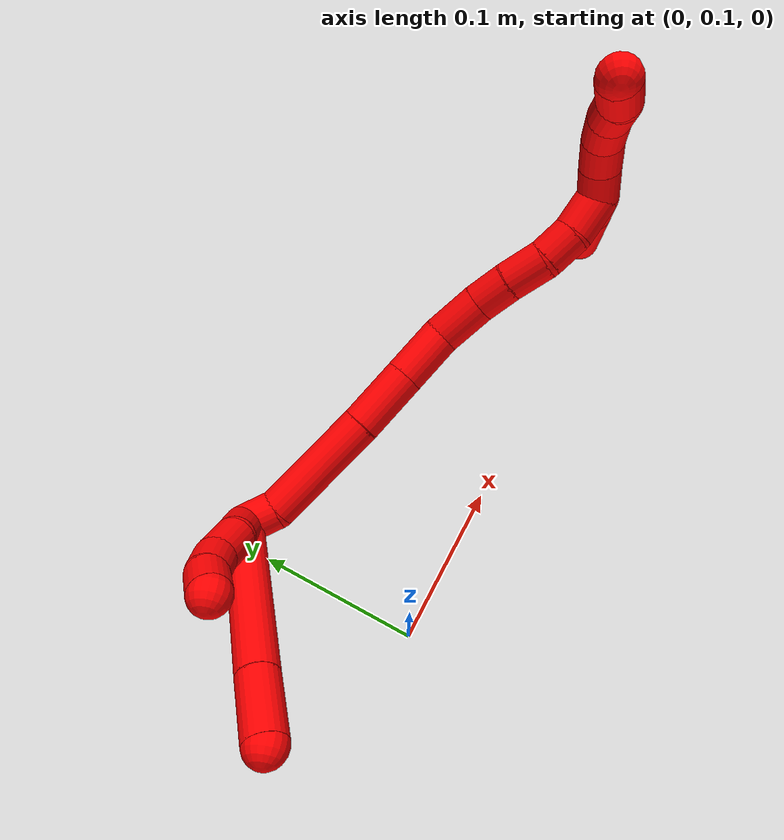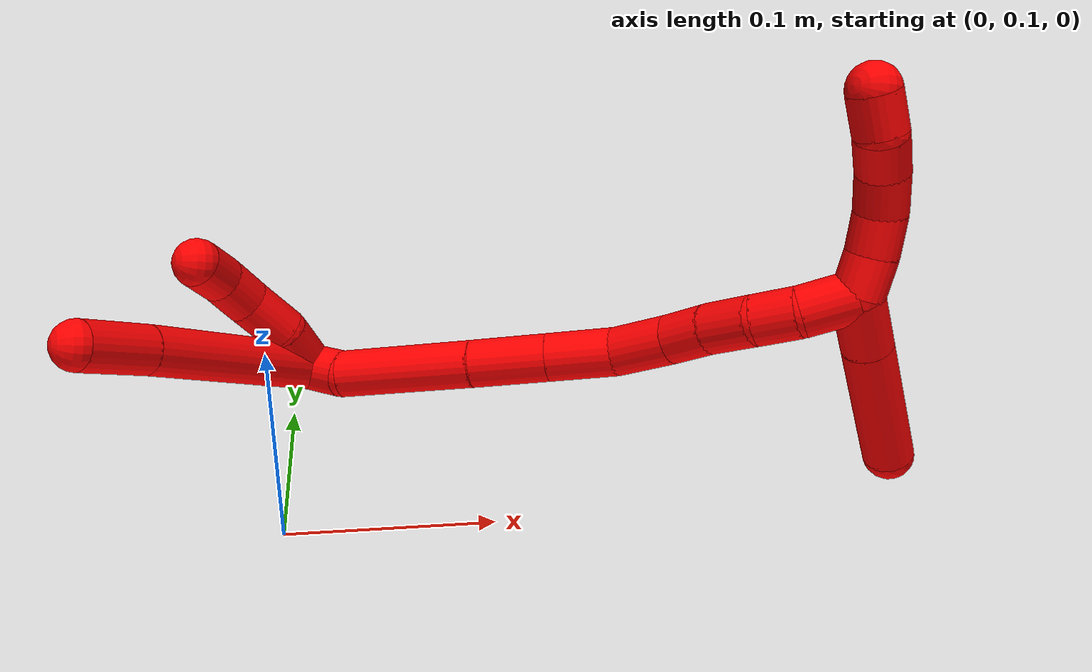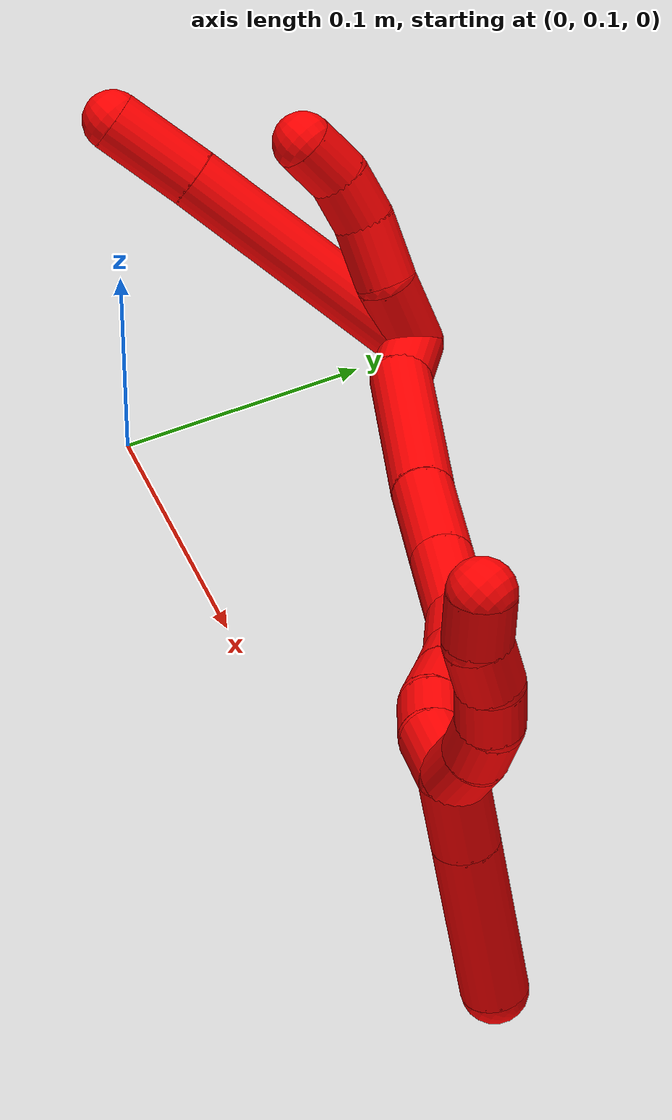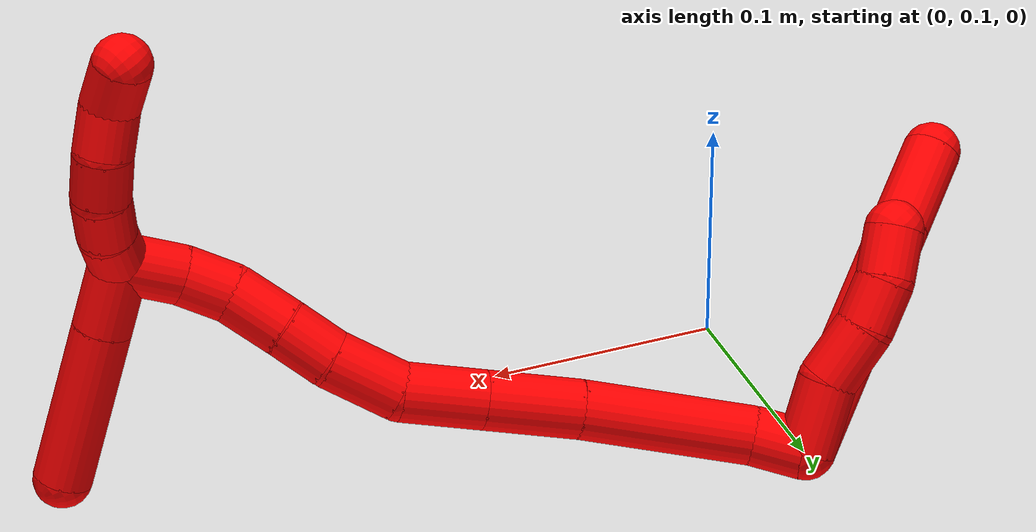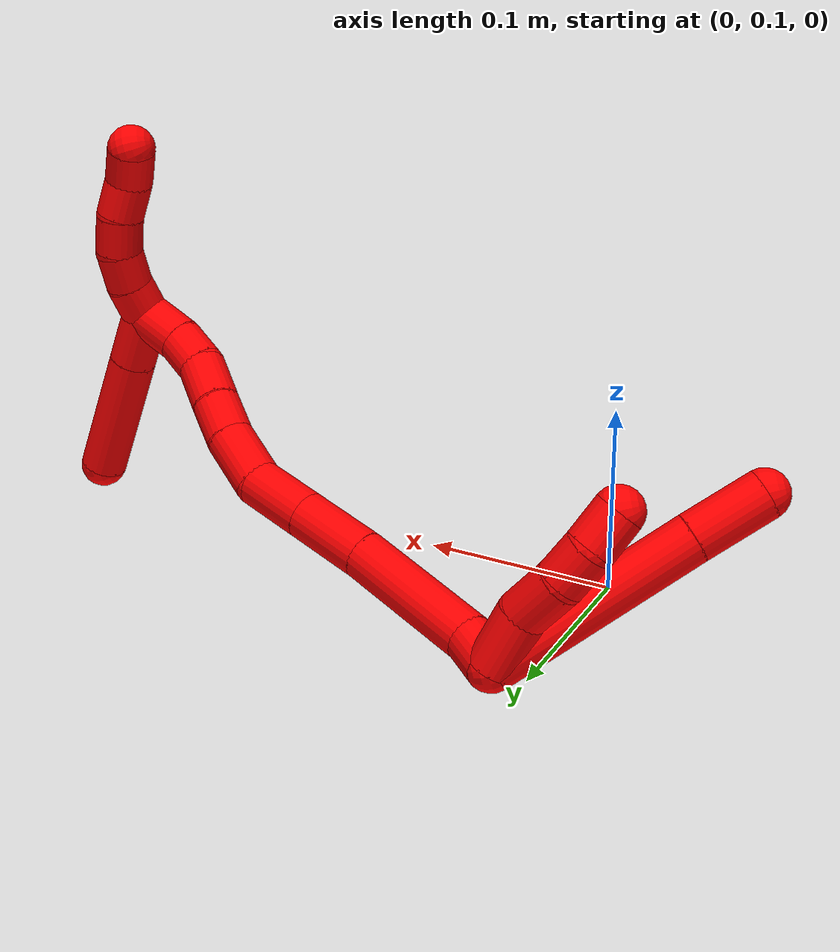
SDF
<sdf version="1.7">
 <world name="default">
  <model name="2">
   <static>0</static>
   <link name="2">
    <collision name="collision-cylinder-e_1_2_8">
     <pose>0.018017 -0.008734 0.05172 0.167294 0.330856 0.027994</pose>
     <geometry><cylinder><radius>0.0125</radius><length>0.110921</length></cylinder></geometry>
     <surface>
      <friction><ode><mu>1.16</mu><mu2>1.16</mu2><slip1>0</slip1><slip2>0</slip2></ode></friction>
      <contact><ode><kp>1e+06</kp><kd>1</kd><max_vel>0</max_vel><min_depth>0.001</min_depth></ode></contact>
     </surface>
    </collision>
    <visual name="visual-cylinder-e_1_2_8">
     <pose>0.018017 -0.008734 0.05172 0.167294 0.330856 0.027994</pose>
     <geometry><cylinder><radius>0.0125</radius><length>0.110921</length></cylinder></geometry>
     <material><ambient>1 0 0 1</ambient></material>
    </visual>
    <collision name="collision-cylinder-e_2_8_6">
     <pose>0.042008 -0.021023 0.121701 0.192276 0.310742 0.030208</pose>
     <geometry><cylinder><radius>0.0125</radius><length>0.039079</length></cylinder></geometry>
     <surface>
      <friction><ode><mu>1.16</mu><mu2>1.16</mu2><slip1>0</slip1><slip2>0</slip2></ode></friction>
      <contact><ode><kp>1e+06</kp><kd>1</kd><max_vel>0</max_vel><min_depth>0.001</min_depth></ode></contact>
     </surface>
    </collision>
    <visual name="visual-cylinder-e_2_8_6">
     <pose>0.042008 -0.021023 0.121701 0.192276 0.310742 0.030208</pose>
     <geometry><cylinder><radius>0.0125</radius><length>0.039079</length></cylinder></geometry>
     <material><ambient>1 0 0 1</ambient></material>
    </visual>
    <collision name="collision-cylinder-e_1_2_9">
     <pose>0.010315 0.004246 0.010833 -0.373555 0.72531 -0.143167</pose>
     <geometry><cylinder><radius>0.0125</radius><length>0.031099</length></cylinder></geometry>
     <surface>
      <friction><ode><mu>1.16</mu><mu2>1.16</mu2><slip1>0</slip1><slip2>0</slip2></ode></friction>
      <contact><ode><kp>1e+06</kp><kd>1</kd><max_vel>0</max_vel><min_depth>0.001</min_depth></ode></contact>
     </surface>
    </collision>
    <visual name="visual-cylinder-e_1_2_9">
     <pose>0.010315 0.004246 0.010833 -0.373555 0.72531 -0.143167</pose>
     <geometry><cylinder><radius>0.0125</radius><length>0.031099</length></cylinder></geometry>
     <material><ambient>1 0 0 1</ambient></material>
    </visual>
    <collision name="collision-cylinder-e_2_9_10">
     <pose>0.0259 0.013661 0.032702 -0.438004 0.408145 -0.092059</pose>
     <geometry><cylinder><radius>0.0125</radius><length>0.026552</length></cylinder></geometry>
     <surface>
      <friction><ode><mu>1.16</mu><mu2>1.16</mu2><slip1>0</slip1><slip2>0</slip2></ode></friction>
      <contact><ode><kp>1e+06</kp><kd>1</kd><max_vel>0</max_vel><min_depth>0.001</min_depth></ode></contact>
     </surface>
    </collision>
    <visual name="visual-cylinder-e_2_9_10">
     <pose>0.0259 0.013661 0.032702 -0.438004 0.408145 -0.092059</pose>
     <geometry><cylinder><radius>0.0125</radius><length>0.026552</length></cylinder></geometry>
     <material><ambient>1 0 0 1</ambient></material>
    </visual>
    <collision name="collision-cylinder-e_3_10_11">
     <pose>0.036863 0.021074 0.052287 -0.256739 0.572201 -0.075906</pose>
     <geometry><cylinder><radius>0.0125</radius><length>0.02103</length></cylinder></geometry>
     <surface>
      <friction><ode><mu>1.16</mu><mu2>1.16</mu2><slip1>0</slip1><slip2>0</slip2></ode></friction>
      <contact><ode><kp>1e+06</kp><kd>1</kd><max_vel>0</max_vel><min_depth>0.001</min_depth></ode></contact>
     </surface>
    </collision>
    <visual name="visual-cylinder-e_3_10_11">
     <pose>0.036863 0.021074 0.052287 -0.256739 0.572201 -0.075906</pose>
     <geometry><cylinder><radius>0.0125</radius><length>0.02103</length></cylinder></geometry>
     <material><ambient>1 0 0 1</ambient></material>
    </visual>
    <collision name="collision-cylinder-e_4_11_5">
     <pose>0.049098 0.022701 0.069231 0.073496 0.660698 0.025213</pose>
     <geometry><cylinder><radius>0.0125</radius><length>0.021318</length></cylinder></geometry>
     <surface>
      <friction><ode><mu>1.16</mu><mu2>1.16</mu2><slip1>0</slip1><slip2>0</slip2></ode></friction>
      <contact><ode><kp>1e+06</kp><kd>1</kd><max_vel>0</max_vel><min_depth>0.001</min_depth></ode></contact>
     </surface>
    </collision>
    <visual name="visual-cylinder-e_4_11_5">
     <pose>0.049098 0.022701 0.069231 0.073496 0.660698 0.025213</pose>
     <geometry><cylinder><radius>0.0125</radius><length>0.021318</length></cylinder></geometry>
     <material><ambient>1 0 0 1</ambient></material>
    </visual>
    <collision name="collision-cylinder-e_1_2_12">
     <pose>0.007244 -0.007244 -0.004856 2.16137 0.69315 1.19012</pose>
     <geometry><cylinder><radius>0.0125</radius><length>0.022675</length></cylinder></geometry>
     <surface>
      <friction><ode><mu>1.16</mu><mu2>1.16</mu2><slip1>0</slip1><slip2>0</slip2></ode></friction>
      <contact><ode><kp>1e+06</kp><kd>1</kd><max_vel>0</max_vel><min_depth>0.001</min_depth></ode></contact>
     </surface>
    </collision>
    <visual name="visual-cylinder-e_1_2_12">
     <pose>0.007244 -0.007244 -0.004856 2.16137 0.69315 1.19012</pose>
     <geometry><cylinder><radius>0.0125</radius><length>0.022675</length></cylinder></geometry>
     <material><ambient>1 0 0 1</ambient></material>
    </visual>
    <collision name="collision-cylinder-e_2_12_13">
     <pose>0.039592 -0.027978 -0.033158 2.61946 0.748114 1.94642</pose>
     <geometry><cylinder><radius>0.0125</radius><length>0.073807</length></cylinder></geometry>
     <surface>
      <friction><ode><mu>1.16</mu><mu2>1.16</mu2><slip1>0</slip1><slip2>0</slip2></ode></friction>
      <contact><ode><kp>1e+06</kp><kd>1</kd><max_vel>0</max_vel><min_depth>0.001</min_depth></ode></contact>
     </surface>
    </collision>
    <visual name="visual-cylinder-e_2_12_13">
     <pose>0.039592 -0.027978 -0.033158 2.61946 0.748114 1.94642</pose>
     <geometry><cylinder><radius>0.0125</radius><length>0.073807</length></cylinder></geometry>
     <material><ambient>1 0 0 1</ambient></material>
    </visual>
    <collision name="collision-cylinder-e_3_13_14">
     <pose>0.077894 -0.048253 -0.070391 2.68431 0.7096 2.0199</pose>
     <geometry><cylinder><radius>0.0125</radius><length>0.040513</length></cylinder></geometry>
     <surface>
      <friction><ode><mu>1.16</mu><mu2>1.16</mu2><slip1>0</slip1><slip2>0</slip2></ode></friction>
      <contact><ode><kp>1e+06</kp><kd>1</kd><max_vel>0</max_vel><min_depth>0.001</min_depth></ode></contact>
     </surface>
    </collision>
    <visual name="visual-cylinder-e_3_13_14">
     <pose>0.077894 -0.048253 -0.070391 2.68431 0.7096 2.0199</pose>
     <geometry><cylinder><radius>0.0125</radius><length>0.040513</length></cylinder></geometry>
     <material><ambient>1 0 0 1</ambient></material>
    </visual>
    <collision name="collision-cylinder-e_4_14_15">
     <pose>0.102534 -0.060894 -0.096138 2.68623 0.709915 2.02425</pose>
     <geometry><cylinder><radius>0.0125</radius><length>0.035114</length></cylinder></geometry>
     <surface>
      <friction><ode><mu>1.16</mu><mu2>1.16</mu2><slip1>0</slip1><slip2>0</slip2></ode></friction>
      <contact><ode><kp>1e+06</kp><kd>1</kd><max_vel>0</max_vel><min_depth>0.001</min_depth></ode></contact>
     </surface>
    </collision>
    <visual name="visual-cylinder-e_4_14_15">
     <pose>0.102534 -0.060894 -0.096138 2.68623 0.709915 2.02425</pose>
     <geometry><cylinder><radius>0.0125</radius><length>0.035114</length></cylinder></geometry>
     <material><ambient>1 0 0 1</ambient></material>
    </visual>
    <collision name="collision-cylinder-e_5_15_16">
     <pose>0.127281 -0.072143 -0.114382 2.43245 1.01397 1.96573</pose>
     <geometry><cylinder><radius>0.0125</radius><length>0.031342</length></cylinder></geometry>
     <surface>
      <friction><ode><mu>1.16</mu><mu2>1.16</mu2><slip1>0</slip1><slip2>0</slip2></ode></friction>
      <contact><ode><kp>1e+06</kp><kd>1</kd><max_vel>0</max_vel><min_depth>0.001</min_depth></ode></contact>
     </surface>
    </collision>
    <visual name="visual-cylinder-e_5_15_16">
     <pose>0.127281 -0.072143 -0.114382 2.43245 1.01397 1.96573</pose>
     <geometry><cylinder><radius>0.0125</radius><length>0.031342</length></cylinder></geometry>
     <material><ambient>1 0 0 1</ambient></material>
    </visual>
    <collision name="collision-cylinder-e_6_16_17">
     <pose>0.150742 -0.081646 -0.123532 2.17953 1.11255 1.74496</pose>
     <geometry><cylinder><radius>0.0125</radius><length>0.02265</length></cylinder></geometry>
     <surface>
      <friction><ode><mu>1.16</mu><mu2>1.16</mu2><slip1>0</slip1><slip2>0</slip2></ode></friction>
      <contact><ode><kp>1e+06</kp><kd>1</kd><max_vel>0</max_vel><min_depth>0.001</min_depth></ode></contact>
     </surface>
    </collision>
    <visual name="visual-cylinder-e_6_16_17">
     <pose>0.150742 -0.081646 -0.123532 2.17953 1.11255 1.74496</pose>
     <geometry><cylinder><radius>0.0125</radius><length>0.02265</length></cylinder></geometry>
     <material><ambient>1 0 0 1</ambient></material>
    </visual>
    <collision name="collision-cylinder-e_7_17_18">
     <pose>0.172058 -0.09127 -0.129565 2.09233 1.05283 1.57491</pose>
     <geometry><cylinder><radius>0.0125</radius><length>0.02569</length></cylinder></geometry>
     <surface>
      <friction><ode><mu>1.16</mu><mu2>1.16</mu2><slip1>0</slip1><slip2>0</slip2></ode></friction>
      <contact><ode><kp>1e+06</kp><kd>1</kd><max_vel>0</max_vel><min_depth>0.001</min_depth></ode></contact>
     </surface>
    </collision>
    <visual name="visual-cylinder-e_7_17_18">
     <pose>0.172058 -0.09127 -0.129565 2.09233 1.05283 1.57491</pose>
     <geometry><cylinder><radius>0.0125</radius><length>0.02569</length></cylinder></geometry>
     <material><ambient>1 0 0 1</ambient></material>
    </visual>
    <collision name="collision-cylinder-e_8_18_19">
     <pose>0.191945 -0.100525 -0.137994 2.52351 0.933947 2.01254</pose>
     <geometry><cylinder><radius>0.0125</radius><length>0.021708</length></cylinder></geometry>
     <surface>
      <friction><ode><mu>1.16</mu><mu2>1.16</mu2><slip1>0</slip1><slip2>0</slip2></ode></friction>
      <contact><ode><kp>1e+06</kp><kd>1</kd><max_vel>0</max_vel><min_depth>0.001</min_depth></ode></contact>
     </surface>
    </collision>
    <visual name="visual-cylinder-e_8_18_19">
     <pose>0.191945 -0.100525 -0.137994 2.52351 0.933947 2.01254</pose>
     <geometry><cylinder><radius>0.0125</radius><length>0.021708</length></cylinder></geometry>
     <material><ambient>1 0 0 1</ambient></material>
    </visual>
    <collision name="collision-cylinder-e_9_19_1">
     <pose>0.210515 -0.106541 -0.151828 2.88215 0.837321 2.57121</pose>
     <geometry><cylinder><radius>0.0125</radius><length>0.026501</length></cylinder></geometry>
     <surface>
      <friction><ode><mu>1.16</mu><mu2>1.16</mu2><slip1>0</slip1><slip2>0</slip2></ode></friction>
      <contact><ode><kp>1e+06</kp><kd>1</kd><max_vel>0</max_vel><min_depth>0.001</min_depth></ode></contact>
     </surface>
    </collision>
    <visual name="visual-cylinder-e_9_19_1">
     <pose>0.210515 -0.106541 -0.151828 2.88215 0.837321 2.57121</pose>
     <geometry><cylinder><radius>0.0125</radius><length>0.026501</length></cylinder></geometry>
     <material><ambient>1 0 0 1</ambient></material>
    </visual>
    <collision name="collision-cylinder-e_1_1_20">
     <pose>0.210087 -0.115286 -0.169093 2.50169 -0.758717 -1.75475</pose>
     <geometry><cylinder><radius>0.0125</radius><length>0.029859</length></cylinder></geometry>
     <surface>
      <friction><ode><mu>1.16</mu><mu2>1.16</mu2><slip1>0</slip1><slip2>0</slip2></ode></friction>
      <contact><ode><kp>1e+06</kp><kd>1</kd><max_vel>0</max_vel><min_depth>0.001</min_depth></ode></contact>
     </surface>
    </collision>
    <visual name="visual-cylinder-e_1_1_20">
     <pose>0.210087 -0.115286 -0.169093 2.50169 -0.758717 -1.75475</pose>
     <geometry><cylinder><radius>0.0125</radius><length>0.029859</length></cylinder></geometry>
     <material><ambient>1 0 0 1</ambient></material>
    </visual>
    <collision name="collision-cylinder-e_2_20_4">
     <pose>0.175666 -0.136995 -0.198144 2.49905 -0.759546 -1.7516</pose>
     <geometry><cylinder><radius>0.0125</radius><length>0.070141</length></cylinder></geometry>
     <surface>
      <friction><ode><mu>1.16</mu><mu2>1.16</mu2><slip1>0</slip1><slip2>0</slip2></ode></friction>
      <contact><ode><kp>1e+06</kp><kd>1</kd><max_vel>0</max_vel><min_depth>0.001</min_depth></ode></contact>
     </surface>
    </collision>
    <visual name="visual-cylinder-e_2_20_4">
     <pose>0.175666 -0.136995 -0.198144 2.49905 -0.759546 -1.7516</pose>
     <geometry><cylinder><radius>0.0125</radius><length>0.070141</length></cylinder></geometry>
     <material><ambient>1 0 0 1</ambient></material>
    </visual>
    <collision name="collision-cylinder-e_1_1_21">
     <pose>0.228543 -0.10312 -0.16115 -1.70126 0.958778 -1.06977</pose>
     <geometry><cylinder><radius>0.0125</radius><length>0.02</length></cylinder></geometry>
     <surface>
      <friction><ode><mu>1.16</mu><mu2>1.16</mu2><slip1>0</slip1><slip2>0</slip2></ode></friction>
      <contact><ode><kp>1e+06</kp><kd>1</kd><max_vel>0</max_vel><min_depth>0.001</min_depth></ode></contact>
     </surface>
    </collision>
    <visual name="visual-cylinder-e_1_1_21">
     <pose>0.228543 -0.10312 -0.16115 -1.70126 0.958778 -1.06977</pose>
     <geometry><cylinder><radius>0.0125</radius><length>0.02</length></cylinder></geometry>
     <material><ambient>1 0 0 1</ambient></material>
    </visual>
    <collision name="collision-cylinder-e_2_21_22">
     <pose>0.244939 -0.091832 -0.160753 -1.36906 0.963359 -0.806546</pose>
     <geometry><cylinder><radius>0.0125</radius><length>0.02</length></cylinder></geometry>
     <surface>
      <friction><ode><mu>1.16</mu><mu2>1.16</mu2><slip1>0</slip1><slip2>0</slip2></ode></friction>
      <contact><ode><kp>1e+06</kp><kd>1</kd><max_vel>0</max_vel><min_depth>0.001</min_depth></ode></contact>
     </surface>
    </collision>
    <visual name="visual-cylinder-e_2_21_22">
     <pose>0.244939 -0.091832 -0.160753 -1.36906 0.963359 -0.806546</pose>
     <geometry><cylinder><radius>0.0125</radius><length>0.02</length></cylinder></geometry>
     <material><ambient>1 0 0 1</ambient></material>
    </visual>
    <collision name="collision-cylinder-e_3_22_23">
     <pose>0.261133 -0.081663 -0.155695 -0.86316 0.924475 -0.451104</pose>
     <geometry><cylinder><radius>0.0125</radius><length>0.02</length></cylinder></geometry>
     <surface>
      <friction><ode><mu>1.16</mu><mu2>1.16</mu2><slip1>0</slip1><slip2>0</slip2></ode></friction>
      <contact><ode><kp>1e+06</kp><kd>1</kd><max_vel>0</max_vel><min_depth>0.001</min_depth></ode></contact>
     </surface>
    </collision>
    <visual name="visual-cylinder-e_3_22_23">
     <pose>0.261133 -0.081663 -0.155695 -0.86316 0.924475 -0.451104</pose>
     <geometry><cylinder><radius>0.0125</radius><length>0.02</length></cylinder></geometry>
     <material><ambient>1 0 0 1</ambient></material>
    </visual>
    <collision name="collision-cylinder-e_4_23_24">
     <pose>0.276685 -0.073796 -0.146133 -0.527721 0.85848 -0.246056</pose>
     <geometry><cylinder><radius>0.0125</radius><length>0.02</length></cylinder></geometry>
     <surface>
      <friction><ode><mu>1.16</mu><mu2>1.16</mu2><slip1>0</slip1><slip2>0</slip2></ode></friction>
      <contact><ode><kp>1e+06</kp><kd>1</kd><max_vel>0</max_vel><min_depth>0.001</min_depth></ode></contact>
     </surface>
    </collision>
    <visual name="visual-cylinder-e_4_23_24">
     <pose>0.276685 -0.073796 -0.146133 -0.527721 0.85848 -0.246056</pose>
     <geometry><cylinder><radius>0.0125</radius><length>0.02</length></cylinder></geometry>
     <material><ambient>1 0 0 1</ambient></material>
    </visual>
    <collision name="collision-cylinder-e_5_24_3">
     <pose>0.290763 -0.064405 -0.135968 -0.933201 0.708938 -0.368606</pose>
     <geometry><cylinder><radius>0.0125</radius><length>0.02</length></cylinder></geometry>
     <surface>
      <friction><ode><mu>1.16</mu><mu2>1.16</mu2><slip1>0</slip1><slip2>0</slip2></ode></friction>
      <contact><ode><kp>1e+06</kp><kd>1</kd><max_vel>0</max_vel><min_depth>0.001</min_depth></ode></contact>
     </surface>
    </collision>
    <visual name="visual-cylinder-e_5_24_3">
     <pose>0.290763 -0.064405 -0.135968 -0.933201 0.708938 -0.368606</pose>
     <geometry><cylinder><radius>0.0125</radius><length>0.02</length></cylinder></geometry>
     <material><ambient>1 0 0 1</ambient></material>
    </visual>
    <collision name="collision-sphere-3">
     <pose>0.297274 -0.058306 -0.13145 0 -0 0</pose>
     <geometry><sphere><radius>0.0125</radius></sphere></geometry>
     <surface>
      <friction><ode><mu>1.16</mu><mu2>1.16</mu2><slip1>0</slip1><slip2>0</slip2></ode></friction>
      <contact><ode><kp>1e+06</kp><kd>1</kd><max_vel>0</max_vel><min_depth>0.001</min_depth></ode></contact>
     </surface>
    </collision>
    <visual name="visual-sphere-3">
     <pose>0.297274 -0.058306 -0.13145 0 -0 0</pose>
     <geometry><sphere><radius>0.0125</radius></sphere></geometry>
     <material><ambient>1 0 0 1</ambient></material>
    </visual>
    <collision name="collision-sphere-24">
     <pose>0.284253 -0.070504 -0.140487 0 -0 0</pose>
     <geometry><sphere><radius>0.0125</radius></sphere></geometry>
     <surface>
      <friction><ode><mu>1.16</mu><mu2>1.16</mu2><slip1>0</slip1><slip2>0</slip2></ode></friction>
      <contact><ode><kp>1e+06</kp><kd>1</kd><max_vel>0</max_vel><min_depth>0.001</min_depth></ode></contact>
     </surface>
    </collision>
    <visual name="visual-sphere-24">
     <pose>0.284253 -0.070504 -0.140487 0 -0 0</pose>
     <geometry><sphere><radius>0.0125</radius></sphere></geometry>
     <material><ambient>1 0 0 1</ambient></material>
    </visual>
    <collision name="collision-sphere-23">
     <pose>0.269116 -0.077087 -0.15178 0 -0 0</pose>
     <geometry><sphere><radius>0.0125</radius></sphere></geometry>
     <surface>
      <friction><ode><mu>1.16</mu><mu2>1.16</mu2><slip1>0</slip1><slip2>0</slip2></ode></friction>
      <contact><ode><kp>1e+06</kp><kd>1</kd><max_vel>0</max_vel><min_depth>0.001</min_depth></ode></contact>
     </surface>
    </collision>
    <visual name="visual-sphere-23">
     <pose>0.269116 -0.077087 -0.15178 0 -0 0</pose>
     <geometry><sphere><radius>0.0125</radius></sphere></geometry>
     <material><ambient>1 0 0 1</ambient></material>
    </visual>
    <collision name="collision-sphere-22">
     <pose>0.25315 -0.08624 -0.15961 0 -0 0</pose>
     <geometry><sphere><radius>0.0125</radius></sphere></geometry>
     <surface>
      <friction><ode><mu>1.16</mu><mu2>1.16</mu2><slip1>0</slip1><slip2>0</slip2></ode></friction>
      <contact><ode><kp>1e+06</kp><kd>1</kd><max_vel>0</max_vel><min_depth>0.001</min_depth></ode></contact>
     </surface>
    </collision>
    <visual name="visual-sphere-22">
     <pose>0.25315 -0.08624 -0.15961 0 -0 0</pose>
     <geometry><sphere><radius>0.0125</radius></sphere></geometry>
     <material><ambient>1 0 0 1</ambient></material>
    </visual>
    <collision name="collision-sphere-21">
     <pose>0.236728 -0.097424 -0.161897 0 -0 0</pose>
     <geometry><sphere><radius>0.0125</radius></sphere></geometry>
     <surface>
      <friction><ode><mu>1.16</mu><mu2>1.16</mu2><slip1>0</slip1><slip2>0</slip2></ode></friction>
      <contact><ode><kp>1e+06</kp><kd>1</kd><max_vel>0</max_vel><min_depth>0.001</min_depth></ode></contact>
     </surface>
    </collision>
    <visual name="visual-sphere-21">
     <pose>0.236728 -0.097424 -0.161897 0 -0 0</pose>
     <geometry><sphere><radius>0.0125</radius></sphere></geometry>
     <material><ambient>1 0 0 1</ambient></material>
    </visual>
    <collision name="collision-sphere-4">
     <pose>0.151517 -0.152234 -0.218504 0 -0 0</pose>
     <geometry><sphere><radius>0.0125</radius></sphere></geometry>
     <surface>
      <friction><ode><mu>1.16</mu><mu2>1.16</mu2><slip1>0</slip1><slip2>0</slip2></ode></friction>
      <contact><ode><kp>1e+06</kp><kd>1</kd><max_vel>0</max_vel><min_depth>0.001</min_depth></ode></contact>
     </surface>
    </collision>
    <visual name="visual-sphere-4">
     <pose>0.151517 -0.152234 -0.218504 0 -0 0</pose>
     <geometry><sphere><radius>0.0125</radius></sphere></geometry>
     <material><ambient>1 0 0 1</ambient></material>
    </visual>
    <collision name="collision-sphere-20">
     <pose>0.199815 -0.121755 -0.177784 0 -0 0</pose>
     <geometry><sphere><radius>0.0125</radius></sphere></geometry>
     <surface>
      <friction><ode><mu>1.16</mu><mu2>1.16</mu2><slip1>0</slip1><slip2>0</slip2></ode></friction>
      <contact><ode><kp>1e+06</kp><kd>1</kd><max_vel>0</max_vel><min_depth>0.001</min_depth></ode></contact>
     </surface>
    </collision>
    <visual name="visual-sphere-20">
     <pose>0.199815 -0.121755 -0.177784 0 -0 0</pose>
     <geometry><sphere><radius>0.0125</radius></sphere></geometry>
     <material><ambient>1 0 0 1</ambient></material>
    </visual>
    <collision name="collision-sphere-11">
     <pose>0.042556 0.023319 0.060838 0 -0 0</pose>
     <geometry><sphere><radius>0.0125</radius></sphere></geometry>
     <surface>
      <friction><ode><mu>1.16</mu><mu2>1.16</mu2><slip1>0</slip1><slip2>0</slip2></ode></friction>
      <contact><ode><kp>1e+06</kp><kd>1</kd><max_vel>0</max_vel><min_depth>0.001</min_depth></ode></contact>
     </surface>
    </collision>
    <visual name="visual-sphere-11">
     <pose>0.042556 0.023319 0.060838 0 -0 0</pose>
     <geometry><sphere><radius>0.0125</radius></sphere></geometry>
     <material><ambient>1 0 0 1</ambient></material>
    </visual>
    <collision name="collision-sphere-10">
     <pose>0.031169 0.018829 0.043737 0 -0 0</pose>
     <geometry><sphere><radius>0.0125</radius></sphere></geometry>
     <surface>
      <friction><ode><mu>1.16</mu><mu2>1.16</mu2><slip1>0</slip1><slip2>0</slip2></ode></friction>
      <contact><ode><kp>1e+06</kp><kd>1</kd><max_vel>0</max_vel><min_depth>0.001</min_depth></ode></contact>
     </surface>
    </collision>
    <visual name="visual-sphere-10">
     <pose>0.031169 0.018829 0.043737 0 -0 0</pose>
     <geometry><sphere><radius>0.0125</radius></sphere></geometry>
     <material><ambient>1 0 0 1</ambient></material>
    </visual>
    <collision name="collision-sphere-6">
     <pose>0.047982 -0.024578 0.139962 0 -0 0</pose>
     <geometry><sphere><radius>0.0125</radius></sphere></geometry>
     <surface>
      <friction><ode><mu>1.16</mu><mu2>1.16</mu2><slip1>0</slip1><slip2>0</slip2></ode></friction>
      <contact><ode><kp>1e+06</kp><kd>1</kd><max_vel>0</max_vel><min_depth>0.001</min_depth></ode></contact>
     </surface>
    </collision>
    <visual name="visual-sphere-6">
     <pose>0.047982 -0.024578 0.139962 0 -0 0</pose>
     <geometry><sphere><radius>0.0125</radius></sphere></geometry>
     <material><ambient>1 0 0 1</ambient></material>
    </visual>
    <collision name="collision-sphere-9">
     <pose>0.02063 0.008492 0.021666 0 -0 0</pose>
     <geometry><sphere><radius>0.0125</radius></sphere></geometry>
     <surface>
      <friction><ode><mu>1.16</mu><mu2>1.16</mu2><slip1>0</slip1><slip2>0</slip2></ode></friction>
      <contact><ode><kp>1e+06</kp><kd>1</kd><max_vel>0</max_vel><min_depth>0.001</min_depth></ode></contact>
     </surface>
    </collision>
    <visual name="visual-sphere-9">
     <pose>0.02063 0.008492 0.021666 0 -0 0</pose>
     <geometry><sphere><radius>0.0125</radius></sphere></geometry>
     <material><ambient>1 0 0 1</ambient></material>
    </visual>
    <collision name="collision-sphere-2">
     <geometry><sphere><radius>0.0125</radius></sphere></geometry>
     <surface>
      <friction><ode><mu>1.16</mu><mu2>1.16</mu2><slip1>0</slip1><slip2>0</slip2></ode></friction>
      <contact><ode><kp>1e+06</kp><kd>1</kd><max_vel>0</max_vel><min_depth>0.001</min_depth></ode></contact>
     </surface>
    </collision>
    <visual name="visual-sphere-2">
     <geometry><sphere><radius>0.0125</radius></sphere></geometry>
     <material><ambient>1 0 0 1</ambient></material>
    </visual>
    <collision name="collision-sphere-19">
     <pose>0.200671 -0.104265 -0.143255 0 -0 0</pose>
     <geometry><sphere><radius>0.0125</radius></sphere></geometry>
     <surface>
      <friction><ode><mu>1.16</mu><mu2>1.16</mu2><slip1>0</slip1><slip2>0</slip2></ode></friction>
      <contact><ode><kp>1e+06</kp><kd>1</kd><max_vel>0</max_vel><min_depth>0.001</min_depth></ode></contact>
     </surface>
    </collision>
    <visual name="visual-sphere-19">
     <pose>0.200671 -0.104265 -0.143255 0 -0 0</pose>
     <geometry><sphere><radius>0.0125</radius></sphere></geometry>
     <material><ambient>1 0 0 1</ambient></material>
    </visual>
    <collision name="collision-sphere-8">
     <pose>0.036033 -0.017468 0.103441 0 -0 0</pose>
     <geometry><sphere><radius>0.0125</radius></sphere></geometry>
     <surface>
      <friction><ode><mu>1.16</mu><mu2>1.16</mu2><slip1>0</slip1><slip2>0</slip2></ode></friction>
      <contact><ode><kp>1e+06</kp><kd>1</kd><max_vel>0</max_vel><min_depth>0.001</min_depth></ode></contact>
     </surface>
    </collision>
    <visual name="visual-sphere-8">
     <pose>0.036033 -0.017468 0.103441 0 -0 0</pose>
     <geometry><sphere><radius>0.0125</radius></sphere></geometry>
     <material><ambient>1 0 0 1</ambient></material>
    </visual>
    <collision name="collision-sphere-5">
     <pose>0.055639 0.022083 0.077625 0 -0 0</pose>
     <geometry><sphere><radius>0.0125</radius></sphere></geometry>
     <surface>
      <friction><ode><mu>1.16</mu><mu2>1.16</mu2><slip1>0</slip1><slip2>0</slip2></ode></friction>
      <contact><ode><kp>1e+06</kp><kd>1</kd><max_vel>0</max_vel><min_depth>0.001</min_depth></ode></contact>
     </surface>
    </collision>
    <visual name="visual-sphere-5">
     <pose>0.055639 0.022083 0.077625 0 -0 0</pose>
     <geometry><sphere><radius>0.0125</radius></sphere></geometry>
     <material><ambient>1 0 0 1</ambient></material>
    </visual>
    <collision name="collision-sphere-12">
     <pose>0.014489 -0.014488 -0.009713 0 -0 0</pose>
     <geometry><sphere><radius>0.0125</radius></sphere></geometry>
     <surface>
      <friction><ode><mu>1.16</mu><mu2>1.16</mu2><slip1>0</slip1><slip2>0</slip2></ode></friction>
      <contact><ode><kp>1e+06</kp><kd>1</kd><max_vel>0</max_vel><min_depth>0.001</min_depth></ode></contact>
     </surface>
    </collision>
    <visual name="visual-sphere-12">
     <pose>0.014489 -0.014488 -0.009713 0 -0 0</pose>
     <geometry><sphere><radius>0.0125</radius></sphere></geometry>
     <material><ambient>1 0 0 1</ambient></material>
    </visual>
    <collision name="collision-sphere-13">
     <pose>0.064696 -0.041468 -0.056603 0 -0 0</pose>
     <geometry><sphere><radius>0.0125</radius></sphere></geometry>
     <surface>
      <friction><ode><mu>1.16</mu><mu2>1.16</mu2><slip1>0</slip1><slip2>0</slip2></ode></friction>
      <contact><ode><kp>1e+06</kp><kd>1</kd><max_vel>0</max_vel><min_depth>0.001</min_depth></ode></contact>
     </surface>
    </collision>
    <visual name="visual-sphere-13">
     <pose>0.064696 -0.041468 -0.056603 0 -0 0</pose>
     <geometry><sphere><radius>0.0125</radius></sphere></geometry>
     <material><ambient>1 0 0 1</ambient></material>
    </visual>
    <collision name="collision-sphere-14">
     <pose>0.091091 -0.055038 -0.084179 0 -0 0</pose>
     <geometry><sphere><radius>0.0125</radius></sphere></geometry>
     <surface>
      <friction><ode><mu>1.16</mu><mu2>1.16</mu2><slip1>0</slip1><slip2>0</slip2></ode></friction>
      <contact><ode><kp>1e+06</kp><kd>1</kd><max_vel>0</max_vel><min_depth>0.001</min_depth></ode></contact>
     </surface>
    </collision>
    <visual name="visual-sphere-14">
     <pose>0.091091 -0.055038 -0.084179 0 -0 0</pose>
     <geometry><sphere><radius>0.0125</radius></sphere></geometry>
     <material><ambient>1 0 0 1</ambient></material>
    </visual>
    <collision name="collision-sphere-15">
     <pose>0.113977 -0.06675 -0.108096 0 -0 0</pose>
     <geometry><sphere><radius>0.0125</radius></sphere></geometry>
     <surface>
      <friction><ode><mu>1.16</mu><mu2>1.16</mu2><slip1>0</slip1><slip2>0</slip2></ode></friction>
      <contact><ode><kp>1e+06</kp><kd>1</kd><max_vel>0</max_vel><min_depth>0.001</min_depth></ode></contact>
     </surface>
    </collision>
    <visual name="visual-sphere-15">
     <pose>0.113977 -0.06675 -0.108096 0 -0 0</pose>
     <geometry><sphere><radius>0.0125</radius></sphere></geometry>
     <material><ambient>1 0 0 1</ambient></material>
    </visual>
    <collision name="collision-sphere-16">
     <pose>0.140585 -0.077536 -0.120667 0 -0 0</pose>
     <geometry><sphere><radius>0.0125</radius></sphere></geometry>
     <surface>
      <friction><ode><mu>1.16</mu><mu2>1.16</mu2><slip1>0</slip1><slip2>0</slip2></ode></friction>
      <contact><ode><kp>1e+06</kp><kd>1</kd><max_vel>0</max_vel><min_depth>0.001</min_depth></ode></contact>
     </surface>
    </collision>
    <visual name="visual-sphere-16">
     <pose>0.140585 -0.077536 -0.120667 0 -0 0</pose>
     <geometry><sphere><radius>0.0125</radius></sphere></geometry>
     <material><ambient>1 0 0 1</ambient></material>
    </visual>
    <collision name="collision-sphere-17">
     <pose>0.160898 -0.085756 -0.126397 0 -0 0</pose>
     <geometry><sphere><radius>0.0125</radius></sphere></geometry>
     <surface>
      <friction><ode><mu>1.16</mu><mu2>1.16</mu2><slip1>0</slip1><slip2>0</slip2></ode></friction>
      <contact><ode><kp>1e+06</kp><kd>1</kd><max_vel>0</max_vel><min_depth>0.001</min_depth></ode></contact>
     </surface>
    </collision>
    <visual name="visual-sphere-17">
     <pose>0.160898 -0.085756 -0.126397 0 -0 0</pose>
     <geometry><sphere><radius>0.0125</radius></sphere></geometry>
     <material><ambient>1 0 0 1</ambient></material>
    </visual>
    <collision name="collision-sphere-18">
     <pose>0.183218 -0.096784 -0.132734 0 -0 0</pose>
     <geometry><sphere><radius>0.0125</radius></sphere></geometry>
     <surface>
      <friction><ode><mu>1.16</mu><mu2>1.16</mu2><slip1>0</slip1><slip2>0</slip2></ode></friction>
      <contact><ode><kp>1e+06</kp><kd>1</kd><max_vel>0</max_vel><min_depth>0.001</min_depth></ode></contact>
     </surface>
    </collision>
    <visual name="visual-sphere-18">
     <pose>0.183218 -0.096784 -0.132734 0 -0 0</pose>
     <geometry><sphere><radius>0.0125</radius></sphere></geometry>
     <material><ambient>1 0 0 1</ambient></material>
    </visual>
    <collision name="collision-sphere-1">
     <pose>0.220358 -0.108816 -0.160402 0 -0 0</pose>
     <geometry><sphere><radius>0.0125</radius></sphere></geometry>
     <surface>
      <friction><ode><mu>1.16</mu><mu2>1.16</mu2><slip1>0</slip1><slip2>0</slip2></ode></friction>
      <contact><ode><kp>1e+06</kp><kd>1</kd><max_vel>0</max_vel><min_depth>0.001</min_depth></ode></contact>
     </surface>
    </collision>
    <visual name="visual-sphere-1">
     <pose>0.220358 -0.108816 -0.160402 0 -0 0</pose>
     <geometry><sphere><radius>0.0125</radius></sphere></geometry>
     <material><ambient>1 0 0 1</ambient></material>
    </visual>
    <inertial>
     <pose>0.110024 -0.052666 -0.060511 0 -0 0</pose>
     <mass>0.75</mass>
     <inertia>
      <ixx>0.00015</ixx>
      <ixy>0</ixy>
      <ixz>0</ixz>
      <iyy>0.000206</iyy>
      <iyz>0</iyz>
      <izz>-1.8e-05</izz>
     </inertia>
    </inertial>
   </link>
   <pose>0.009304 0.220663 0.016791 0.955055 -1.01013 -0.634764</pose>
  </model>
 </world>
</sdf>
